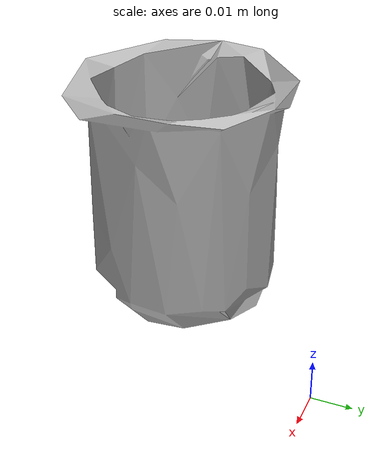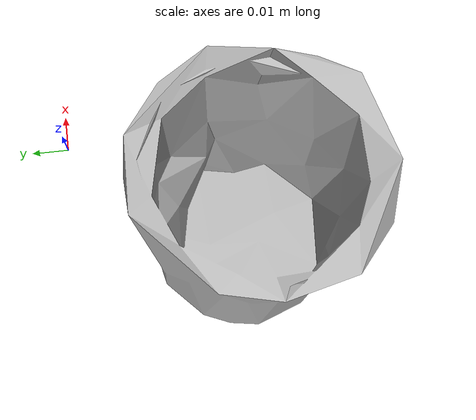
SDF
<?xml version='1.0'?>
<sdf version="1.4">
  <model name="065-a_cups">
    <static>false</static>
    <link name="link">
      <inertial>
        <pose>-0.03200421216295593 -0.045311765622554435 0.03292448849092316 3.1408366133989967 -0.001002629860843936 2.7539712916287287</pose>
        <mass>0.012499497195845411</mass>
        <inertia>
          <ixx>5.815160381811815e-06</ixx>
          <ixy>-1.4646701905535686e-21</ixy>
          <ixz>1.407317226032555e-22</ixz>
          <iyy>5.810616228774471e-06</iyy>
          <iyz>-3.223258287489471e-23</iyz>
          <izz>4.173295425524755e-06</izz>
        </inertia>
      </inertial>
      <collision name="collision">
        <geometry>
          <mesh>
            <!-- Use a downsampled mesh for collisions -->
            <uri>model:///065-a_cups/065-a_cups_250_collision.stl</uri>
	        </mesh>
        </geometry>
        <surface>
      </surface>
      </collision>
      <visual name="visual">
        <geometry>
          <mesh>
            <uri>model:///065-a_cups/textured.obj</uri>
	        </mesh>
        </geometry>
        <material>
          <script>
            <uri>model:///065-a_cups/065-a_cups.material</uri>
            <name>065-a_cups</name>
          </script>
        </material>
      </visual>
    </link>
  </model>
</sdf>
